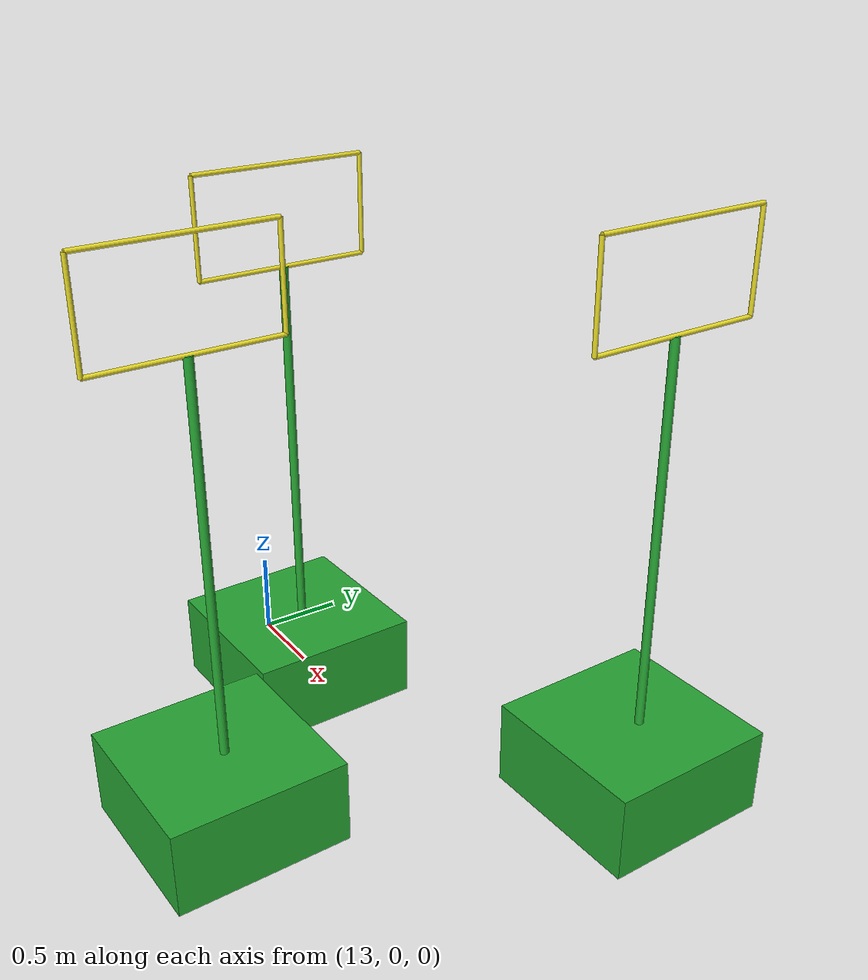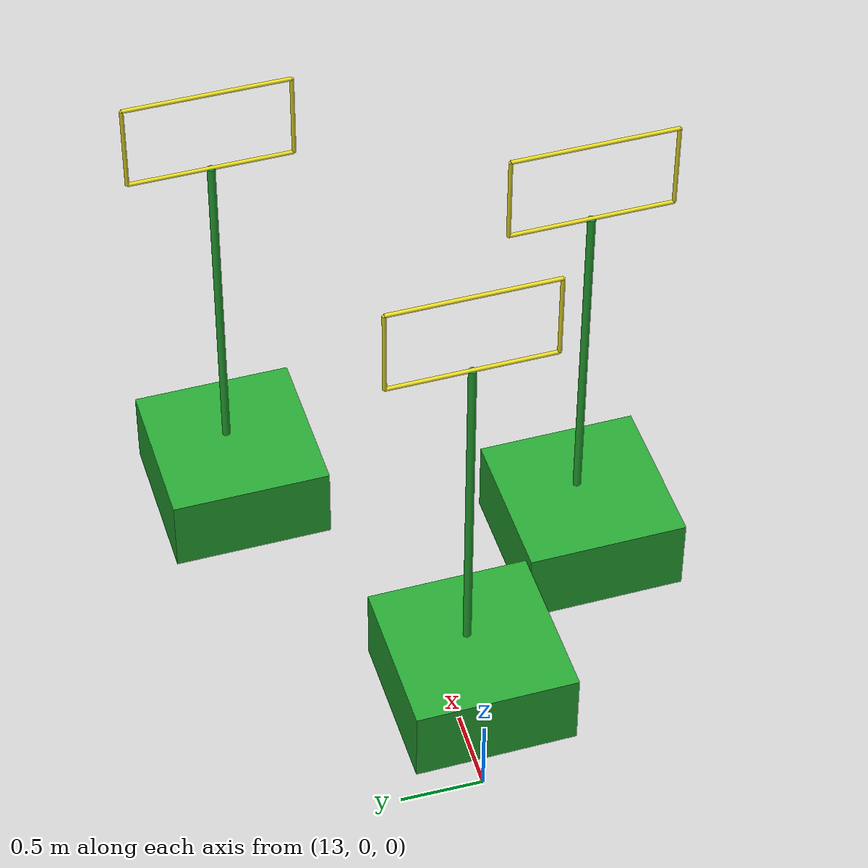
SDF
<sdf version="1.6">
 <world name="vrc_task_1">
  <model name="flipkart_hoop_clone_8">
   <link name="link_0">
    <inertial>
     <mass>0.530306</mass>
     <inertia>
      <ixx>0.0566207</ixx>
      <ixy>0</ixy>
      <ixz>0</ixz>
      <iyy>0.0566207</iyy>
      <iyz>0</iyz>
      <izz>0.0883844</izz>
     </inertia>
    </inertial>
    <pose>0.141833 0.667401 -1.68595 0 -0 0</pose>
    <visual name="visual">
     <geometry><box><size>1 1 0.5</size></box></geometry>
     <material>
      <lighting>1</lighting>
      <script><uri>file://media/materials/scripts/gazebo.material</uri><name>Gazebo/Green</name></script>
      <shader type="pixel"/>
      <emissive>0 0 0 1</emissive>
     </material>
    </visual>
    <collision name="collision">
     <geometry><box><size>1 1 0.5</size></box></geometry>
     <surface>
      <friction>
       <ode><mu>1</mu><mu2>1</mu2><fdir1>0 0 0</fdir1><slip1>0</slip1><slip2>0</slip2></ode>
       <torsional>
        <coefficient>1</coefficient>
        <patch_radius>0</patch_radius>
        <surface_radius>0</surface_radius>
        <use_patch_radius>1</use_patch_radius>
        <ode><slip>0</slip></ode>
       </torsional>
      </friction>
      <bounce><restitution_coefficient>0</restitution_coefficient><threshold>1e+06</threshold></bounce>
      <contact>
       <collide_without_contact>0</collide_without_contact>
       <collide_without_contact_bitmask>1</collide_without_contact_bitmask>
       <collide_bitmask>1</collide_bitmask>
       <ode>
        <soft_cfm>0</soft_cfm>
        <soft_erp>0.2</soft_erp>
        <kp>1e+13</kp>
        <kd>1</kd>
        <max_vel>0.01</max_vel>
        <min_depth>0</min_depth>
       </ode>
       <bullet>
        <split_impulse>1</split_impulse>
        <split_impulse_penetration_threshold>-0.01</split_impulse_penetration_threshold>
        <soft_cfm>0</soft_cfm>
        <soft_erp>0.2</soft_erp>
        <kp>1e+13</kp>
        <kd>1</kd>
       </bullet>
      </contact>
     </surface>
    </collision>
   </link>
   <link name="link_1">
    <inertial>
     <mass>0.25</mass>
     <inertia>
      <ixx>0.130247</ixx>
      <ixy>0</ixy>
      <ixz>0</ixz>
      <iyy>0.130247</iyy>
      <iyz>0</iyz>
      <izz>7.813e-05</izz>
     </inertia>
    </inertial>
    <pose>0.122412 0.714194 -0.478486 0 -0 0</pose>
    <visual name="visual">
     <geometry><cylinder><radius>0.025</radius><length>2.5</length></cylinder></geometry>
     <material>
      <lighting>1</lighting>
      <script><uri>file://media/materials/scripts/gazebo.material</uri><name>Gazebo/Green</name></script>
      <shader type="pixel"/>
      <emissive>0 0 0 1</emissive>
     </material>
    </visual>
    <collision name="collision">
     <geometry><cylinder><radius>0.025</radius><length>2.5</length></cylinder></geometry>
     <surface>
      <friction>
       <ode><mu>1</mu><mu2>1</mu2><fdir1>0 0 0</fdir1><slip1>0</slip1><slip2>0</slip2></ode>
       <torsional>
        <coefficient>1</coefficient>
        <patch_radius>0</patch_radius>
        <surface_radius>0</surface_radius>
        <use_patch_radius>1</use_patch_radius>
        <ode><slip>0</slip></ode>
       </torsional>
      </friction>
      <bounce><restitution_coefficient>0</restitution_coefficient><threshold>1e+06</threshold></bounce>
      <contact>
       <collide_without_contact>0</collide_without_contact>
       <collide_without_contact_bitmask>1</collide_without_contact_bitmask>
       <collide_bitmask>1</collide_bitmask>
       <ode>
        <soft_cfm>0</soft_cfm>
        <soft_erp>0.2</soft_erp>
        <kp>1e+13</kp>
        <kd>1</kd>
        <max_vel>0.01</max_vel>
        <min_depth>0</min_depth>
       </ode>
       <bullet>
        <split_impulse>1</split_impulse>
        <split_impulse_penetration_threshold>-0.01</split_impulse_penetration_threshold>
        <soft_cfm>0</soft_cfm>
        <soft_erp>0.2</soft_erp>
        <kp>1e+13</kp>
        <kd>1</kd>
       </bullet>
      </contact>
     </surface>
    </collision>
   </link>
   <link name="link_2">
    <inertial>
     <mass>0.05</mass>
     <inertia>
      <ixx>0.00416862</ixx>
      <ixy>0</ixy>
      <ixz>0</ixz>
      <iyy>0.00416862</iyy>
      <iyz>0</iyz>
      <izz>3.91e-06</izz>
     </inertia>
    </inertial>
    <pose>0.122412 0.714194 1.32141 1.57 -0 1.57</pose>
    <visual name="visual">
     <geometry><cylinder><radius>0.0125</radius><length>1</length></cylinder></geometry>
     <material>
      <lighting>1</lighting>
      <script><uri>file://media/materials/scripts/gazebo.material</uri><name>Gazebo/Yellow</name></script>
      <shader type="pixel"/>
      <emissive>0 0 0 1</emissive>
     </material>
    </visual>
    <collision name="collision">
     <geometry><cylinder><radius>0.0125</radius><length>1</length></cylinder></geometry>
     <surface>
      <friction>
       <ode><mu>1</mu><mu2>1</mu2><fdir1>0 0 0</fdir1><slip1>0</slip1><slip2>0</slip2></ode>
       <torsional>
        <coefficient>1</coefficient>
        <patch_radius>0</patch_radius>
        <surface_radius>0</surface_radius>
        <use_patch_radius>1</use_patch_radius>
        <ode><slip>0</slip></ode>
       </torsional>
      </friction>
      <bounce><restitution_coefficient>0</restitution_coefficient><threshold>1e+06</threshold></bounce>
      <contact>
       <collide_without_contact>0</collide_without_contact>
       <collide_without_contact_bitmask>1</collide_without_contact_bitmask>
       <collide_bitmask>1</collide_bitmask>
       <ode>
        <soft_cfm>0</soft_cfm>
        <soft_erp>0.2</soft_erp>
        <kp>1e+13</kp>
        <kd>1</kd>
        <max_vel>0.01</max_vel>
        <min_depth>0</min_depth>
       </ode>
       <bullet>
        <split_impulse>1</split_impulse>
        <split_impulse_penetration_threshold>-0.01</split_impulse_penetration_threshold>
        <soft_cfm>0</soft_cfm>
        <soft_erp>0.2</soft_erp>
        <kp>1e+13</kp>
        <kd>1</kd>
       </bullet>
      </contact>
     </surface>
    </collision>
   </link>
   <link name="link_2_clone_0">
    <inertial>
     <mass>0.05</mass>
     <inertia>
      <ixx>0.00416862</ixx>
      <ixy>0</ixy>
      <ixz>0</ixz>
      <iyy>0.00416862</iyy>
      <iyz>0</iyz>
      <izz>3.91e-06</izz>
     </inertia>
    </inertial>
    <pose>0.122412 0.714194 0.771414 1.57 -0 1.57</pose>
    <visual name="visual">
     <geometry><cylinder><radius>0.0125</radius><length>1</length></cylinder></geometry>
     <material>
      <lighting>1</lighting>
      <script><uri>file://media/materials/scripts/gazebo.material</uri><name>Gazebo/Yellow</name></script>
      <shader type="pixel"/>
      <emissive>0 0 0 1</emissive>
     </material>
    </visual>
    <collision name="collision">
     <geometry><cylinder><radius>0.0125</radius><length>1</length></cylinder></geometry>
     <surface>
      <friction>
       <ode><mu>1</mu><mu2>1</mu2><fdir1>0 0 0</fdir1><slip1>0</slip1><slip2>0</slip2></ode>
       <torsional>
        <coefficient>1</coefficient>
        <patch_radius>0</patch_radius>
        <surface_radius>0</surface_radius>
        <use_patch_radius>1</use_patch_radius>
        <ode><slip>0</slip></ode>
       </torsional>
      </friction>
      <bounce><restitution_coefficient>0</restitution_coefficient><threshold>1e+06</threshold></bounce>
      <contact>
       <collide_without_contact>0</collide_without_contact>
       <collide_without_contact_bitmask>1</collide_without_contact_bitmask>
       <collide_bitmask>1</collide_bitmask>
       <ode>
        <soft_cfm>0</soft_cfm>
        <soft_erp>0.2</soft_erp>
        <kp>1e+13</kp>
        <kd>1</kd>
        <max_vel>0.01</max_vel>
        <min_depth>0</min_depth>
       </ode>
       <bullet>
        <split_impulse>1</split_impulse>
        <split_impulse_penetration_threshold>-0.01</split_impulse_penetration_threshold>
        <soft_cfm>0</soft_cfm>
        <soft_erp>0.2</soft_erp>
        <kp>1e+13</kp>
        <kd>1</kd>
       </bullet>
      </contact>
     </surface>
    </collision>
   </link>
   <link name="link_3_clone_clone">
    <inertial>
     <mass>0.025</mass>
     <inertia>
      <ixx>0.00063118</ixx>
      <ixy>0</ixy>
      <ixz>0</ixz>
      <iyy>0.00063118</iyy>
      <iyz>0</iyz>
      <izz>1.95e-06</izz>
     </inertia>
    </inertial>
    <pose>-0.377588 0.714194 1.04641 8e-06 -0 8e-06</pose>
    <visual name="visual">
     <geometry><cylinder><radius>0.0125</radius><length>0.55</length></cylinder></geometry>
     <material>
      <lighting>1</lighting>
      <script><uri>file://media/materials/scripts/gazebo.material</uri><name>Gazebo/Yellow</name></script>
      <shader type="pixel"/>
      <emissive>0 0 0 1</emissive>
     </material>
    </visual>
    <collision name="collision">
     <geometry><cylinder><radius>0.0125</radius><length>0.55</length></cylinder></geometry>
     <surface>
      <friction>
       <ode><mu>1</mu><mu2>1</mu2><fdir1>0 0 0</fdir1><slip1>0</slip1><slip2>0</slip2></ode>
       <torsional>
        <coefficient>1</coefficient>
        <patch_radius>0</patch_radius>
        <surface_radius>0</surface_radius>
        <use_patch_radius>1</use_patch_radius>
        <ode><slip>0</slip></ode>
       </torsional>
      </friction>
      <bounce><restitution_coefficient>0</restitution_coefficient><threshold>1e+06</threshold></bounce>
      <contact>
       <collide_without_contact>0</collide_without_contact>
       <collide_without_contact_bitmask>1</collide_without_contact_bitmask>
       <collide_bitmask>1</collide_bitmask>
       <ode>
        <soft_cfm>0</soft_cfm>
        <soft_erp>0.2</soft_erp>
        <kp>1e+13</kp>
        <kd>1</kd>
        <max_vel>0.01</max_vel>
        <min_depth>0</min_depth>
       </ode>
       <bullet>
        <split_impulse>1</split_impulse>
        <split_impulse_penetration_threshold>-0.01</split_impulse_penetration_threshold>
        <soft_cfm>0</soft_cfm>
        <soft_erp>0.2</soft_erp>
        <kp>1e+13</kp>
        <kd>1</kd>
       </bullet>
      </contact>
     </surface>
    </collision>
   </link>
   <link name="link_3_clone_clone_clone">
    <inertial>
     <mass>0.025</mass>
     <inertia>
      <ixx>0.00063118</ixx>
      <ixy>0</ixy>
      <ixz>0</ixz>
      <iyy>0.00063118</iyy>
      <iyz>0</iyz>
      <izz>1.95e-06</izz>
     </inertia>
    </inertial>
    <pose>0.622412 0.714194 1.04641 5.7e-05 -0 5.7e-05</pose>
    <visual name="visual">
     <geometry><cylinder><radius>0.0125</radius><length>0.55</length></cylinder></geometry>
     <material>
      <lighting>1</lighting>
      <script><uri>file://media/materials/scripts/gazebo.material</uri><name>Gazebo/Yellow</name></script>
      <shader type="pixel"/>
      <emissive>0 0 0 1</emissive>
     </material>
    </visual>
    <collision name="collision">
     <geometry><cylinder><radius>0.0125</radius><length>0.55</length></cylinder></geometry>
     <surface>
      <friction>
       <ode><mu>1</mu><mu2>1</mu2><fdir1>0 0 0</fdir1><slip1>0</slip1><slip2>0</slip2></ode>
       <torsional>
        <coefficient>1</coefficient>
        <patch_radius>0</patch_radius>
        <surface_radius>0</surface_radius>
        <use_patch_radius>1</use_patch_radius>
        <ode><slip>0</slip></ode>
       </torsional>
      </friction>
      <bounce><restitution_coefficient>0</restitution_coefficient><threshold>1e+06</threshold></bounce>
      <contact>
       <collide_without_contact>0</collide_without_contact>
       <collide_without_contact_bitmask>1</collide_without_contact_bitmask>
       <collide_bitmask>1</collide_bitmask>
       <ode>
        <soft_cfm>0</soft_cfm>
        <soft_erp>0.2</soft_erp>
        <kp>1e+13</kp>
        <kd>1</kd>
        <max_vel>0.01</max_vel>
        <min_depth>0</min_depth>
       </ode>
       <bullet>
        <split_impulse>1</split_impulse>
        <split_impulse_penetration_threshold>-0.01</split_impulse_penetration_threshold>
        <soft_cfm>0</soft_cfm>
        <soft_erp>0.2</soft_erp>
        <kp>1e+13</kp>
        <kd>1</kd>
       </bullet>
      </contact>
     </surface>
    </collision>
   </link>
   <joint name="link_0_JOINT_0" type="fixed">
    <parent>link_0</parent>
    <child>link_1</child>
    <physics>
     <ode><limit><cfm>0</cfm><erp>0.2</erp></limit><suspension><cfm>0</cfm><erp>0.2</erp></suspension></ode>
    </physics>
   </joint>
   <joint name="link_1_JOINT_0" type="fixed">
    <parent>link_1</parent>
    <child>link_2_clone_0</child>
    <physics>
     <ode><limit><cfm>0</cfm><erp>0.2</erp></limit><suspension><cfm>0</cfm><erp>0.2</erp></suspension></ode>
    </physics>
   </joint>
   <joint name="link_2_JOINT_2" type="fixed">
    <parent>link_2</parent>
    <child>link_3_clone_clone_clone</child>
    <physics>
     <ode><limit><cfm>0</cfm><erp>0.2</erp></limit><suspension><cfm>0</cfm><erp>0.2</erp></suspension></ode>
    </physics>
   </joint>
   <joint name="link_2_clone_0_JOINT_4" type="fixed">
    <parent>link_2_clone_0</parent>
    <child>link_3_clone_clone</child>
    <physics>
     <ode><limit><cfm>0</cfm><erp>0.2</erp></limit><suspension><cfm>0</cfm><erp>0.2</erp></suspension></ode>
    </physics>
   </joint>
   <joint name="link_3_clone_clone_JOINT_1" type="fixed">
    <parent>link_3_clone_clone</parent>
    <child>link_2</child>
    <physics>
     <ode><limit><cfm>0</cfm><erp>0.2</erp></limit><suspension><cfm>0</cfm><erp>0.2</erp></suspension></ode>
    </physics>
   </joint>
   <joint name="link_3_clone_clone_clone_JOINT_3" type="fixed">
    <parent>link_3_clone_clone_clone</parent>
    <child>link_2_clone_0</child>
    <physics>
     <ode><limit><cfm>0</cfm><erp>0.2</erp></limit><suspension><cfm>0</cfm><erp>0.2</erp></suspension></ode>
    </physics>
   </joint>
   <static>0</static>
   <pose>13.0005 -0.000211 1.9359 -3e-06 -6.6e-05 -1.54349</pose>
  </model>
  <model name="flipkart_hoop_clone_9">
   <link name="link_0">
    <inertial>
     <mass>0.530306</mass>
     <inertia>
      <ixx>0.0566207</ixx>
      <ixy>0</ixy>
      <ixz>0</ixz>
      <iyy>0.0566207</iyy>
      <iyz>0</iyz>
      <izz>0.0883844</izz>
     </inertia>
    </inertial>
    <pose>0.141833 0.667401 -1.68595 0 -0 0</pose>
    <visual name="visual">
     <geometry><box><size>1 1 0.5</size></box></geometry>
     <material>
      <lighting>1</lighting>
      <script><uri>file://media/materials/scripts/gazebo.material</uri><name>Gazebo/Green</name></script>
      <shader type="pixel"/>
      <emissive>0 0 0 1</emissive>
     </material>
    </visual>
    <collision name="collision">
     <geometry><box><size>1 1 0.5</size></box></geometry>
     <surface>
      <friction>
       <ode><mu>1</mu><mu2>1</mu2><fdir1>0 0 0</fdir1><slip1>0</slip1><slip2>0</slip2></ode>
       <torsional>
        <coefficient>1</coefficient>
        <patch_radius>0</patch_radius>
        <surface_radius>0</surface_radius>
        <use_patch_radius>1</use_patch_radius>
        <ode><slip>0</slip></ode>
       </torsional>
      </friction>
      <bounce><restitution_coefficient>0</restitution_coefficient><threshold>1e+06</threshold></bounce>
      <contact>
       <collide_without_contact>0</collide_without_contact>
       <collide_without_contact_bitmask>1</collide_without_contact_bitmask>
       <collide_bitmask>1</collide_bitmask>
       <ode>
        <soft_cfm>0</soft_cfm>
        <soft_erp>0.2</soft_erp>
        <kp>1e+13</kp>
        <kd>1</kd>
        <max_vel>0.01</max_vel>
        <min_depth>0</min_depth>
       </ode>
       <bullet>
        <split_impulse>1</split_impulse>
        <split_impulse_penetration_threshold>-0.01</split_impulse_penetration_threshold>
        <soft_cfm>0</soft_cfm>
        <soft_erp>0.2</soft_erp>
        <kp>1e+13</kp>
        <kd>1</kd>
       </bullet>
      </contact>
     </surface>
    </collision>
   </link>
   <link name="link_1">
    <inertial>
     <mass>0.25</mass>
     <inertia>
      <ixx>0.130247</ixx>
      <ixy>0</ixy>
      <ixz>0</ixz>
      <iyy>0.130247</iyy>
      <iyz>0</iyz>
      <izz>7.813e-05</izz>
     </inertia>
    </inertial>
    <pose>0.122412 0.714194 -0.478486 0 -0 0</pose>
    <visual name="visual">
     <geometry><cylinder><radius>0.025</radius><length>2.5</length></cylinder></geometry>
     <material>
      <lighting>1</lighting>
      <script><uri>file://media/materials/scripts/gazebo.material</uri><name>Gazebo/Green</name></script>
      <shader type="pixel"/>
      <emissive>0 0 0 1</emissive>
     </material>
    </visual>
    <collision name="collision">
     <geometry><cylinder><radius>0.025</radius><length>2.5</length></cylinder></geometry>
     <surface>
      <friction>
       <ode><mu>1</mu><mu2>1</mu2><fdir1>0 0 0</fdir1><slip1>0</slip1><slip2>0</slip2></ode>
       <torsional>
        <coefficient>1</coefficient>
        <patch_radius>0</patch_radius>
        <surface_radius>0</surface_radius>
        <use_patch_radius>1</use_patch_radius>
        <ode><slip>0</slip></ode>
       </torsional>
      </friction>
      <bounce><restitution_coefficient>0</restitution_coefficient><threshold>1e+06</threshold></bounce>
      <contact>
       <collide_without_contact>0</collide_without_contact>
       <collide_without_contact_bitmask>1</collide_without_contact_bitmask>
       <collide_bitmask>1</collide_bitmask>
       <ode>
        <soft_cfm>0</soft_cfm>
        <soft_erp>0.2</soft_erp>
        <kp>1e+13</kp>
        <kd>1</kd>
        <max_vel>0.01</max_vel>
        <min_depth>0</min_depth>
       </ode>
       <bullet>
        <split_impulse>1</split_impulse>
        <split_impulse_penetration_threshold>-0.01</split_impulse_penetration_threshold>
        <soft_cfm>0</soft_cfm>
        <soft_erp>0.2</soft_erp>
        <kp>1e+13</kp>
        <kd>1</kd>
       </bullet>
      </contact>
     </surface>
    </collision>
   </link>
   <link name="link_2">
    <inertial>
     <mass>0.05</mass>
     <inertia>
      <ixx>0.00416862</ixx>
      <ixy>0</ixy>
      <ixz>0</ixz>
      <iyy>0.00416862</iyy>
      <iyz>0</iyz>
      <izz>3.91e-06</izz>
     </inertia>
    </inertial>
    <pose>0.122412 0.714194 1.32141 1.57 -0 1.57</pose>
    <visual name="visual">
     <geometry><cylinder><radius>0.0125</radius><length>1</length></cylinder></geometry>
     <material>
      <lighting>1</lighting>
      <script><uri>file://media/materials/scripts/gazebo.material</uri><name>Gazebo/Yellow</name></script>
      <shader type="pixel"/>
      <emissive>0 0 0 1</emissive>
     </material>
    </visual>
    <collision name="collision">
     <geometry><cylinder><radius>0.0125</radius><length>1</length></cylinder></geometry>
     <surface>
      <friction>
       <ode><mu>1</mu><mu2>1</mu2><fdir1>0 0 0</fdir1><slip1>0</slip1><slip2>0</slip2></ode>
       <torsional>
        <coefficient>1</coefficient>
        <patch_radius>0</patch_radius>
        <surface_radius>0</surface_radius>
        <use_patch_radius>1</use_patch_radius>
        <ode><slip>0</slip></ode>
       </torsional>
      </friction>
      <bounce><restitution_coefficient>0</restitution_coefficient><threshold>1e+06</threshold></bounce>
      <contact>
       <collide_without_contact>0</collide_without_contact>
       <collide_without_contact_bitmask>1</collide_without_contact_bitmask>
       <collide_bitmask>1</collide_bitmask>
       <ode>
        <soft_cfm>0</soft_cfm>
        <soft_erp>0.2</soft_erp>
        <kp>1e+13</kp>
        <kd>1</kd>
        <max_vel>0.01</max_vel>
        <min_depth>0</min_depth>
       </ode>
       <bullet>
        <split_impulse>1</split_impulse>
        <split_impulse_penetration_threshold>-0.01</split_impulse_penetration_threshold>
        <soft_cfm>0</soft_cfm>
        <soft_erp>0.2</soft_erp>
        <kp>1e+13</kp>
        <kd>1</kd>
       </bullet>
      </contact>
     </surface>
    </collision>
   </link>
   <link name="link_2_clone_0">
    <inertial>
     <mass>0.05</mass>
     <inertia>
      <ixx>0.00416862</ixx>
      <ixy>0</ixy>
      <ixz>0</ixz>
      <iyy>0.00416862</iyy>
      <iyz>0</iyz>
      <izz>3.91e-06</izz>
     </inertia>
    </inertial>
    <pose>0.122412 0.714194 0.771414 1.57 -0 1.57</pose>
    <visual name="visual">
     <geometry><cylinder><radius>0.0125</radius><length>1</length></cylinder></geometry>
     <material>
      <lighting>1</lighting>
      <script><uri>file://media/materials/scripts/gazebo.material</uri><name>Gazebo/Yellow</name></script>
      <shader type="pixel"/>
      <emissive>0 0 0 1</emissive>
     </material>
    </visual>
    <collision name="collision">
     <geometry><cylinder><radius>0.0125</radius><length>1</length></cylinder></geometry>
     <surface>
      <friction>
       <ode><mu>1</mu><mu2>1</mu2><fdir1>0 0 0</fdir1><slip1>0</slip1><slip2>0</slip2></ode>
       <torsional>
        <coefficient>1</coefficient>
        <patch_radius>0</patch_radius>
        <surface_radius>0</surface_radius>
        <use_patch_radius>1</use_patch_radius>
        <ode><slip>0</slip></ode>
       </torsional>
      </friction>
      <bounce><restitution_coefficient>0</restitution_coefficient><threshold>1e+06</threshold></bounce>
      <contact>
       <collide_without_contact>0</collide_without_contact>
       <collide_without_contact_bitmask>1</collide_without_contact_bitmask>
       <collide_bitmask>1</collide_bitmask>
       <ode>
        <soft_cfm>0</soft_cfm>
        <soft_erp>0.2</soft_erp>
        <kp>1e+13</kp>
        <kd>1</kd>
        <max_vel>0.01</max_vel>
        <min_depth>0</min_depth>
       </ode>
       <bullet>
        <split_impulse>1</split_impulse>
        <split_impulse_penetration_threshold>-0.01</split_impulse_penetration_threshold>
        <soft_cfm>0</soft_cfm>
        <soft_erp>0.2</soft_erp>
        <kp>1e+13</kp>
        <kd>1</kd>
       </bullet>
      </contact>
     </surface>
    </collision>
   </link>
   <link name="link_3_clone_clone">
    <inertial>
     <mass>0.025</mass>
     <inertia>
      <ixx>0.00063118</ixx>
      <ixy>0</ixy>
      <ixz>0</ixz>
      <iyy>0.00063118</iyy>
      <iyz>0</iyz>
      <izz>1.95e-06</izz>
     </inertia>
    </inertial>
    <pose>-0.377588 0.714194 1.04641 8e-06 -0 8e-06</pose>
    <visual name="visual">
     <geometry><cylinder><radius>0.0125</radius><length>0.55</length></cylinder></geometry>
     <material>
      <lighting>1</lighting>
      <script><uri>file://media/materials/scripts/gazebo.material</uri><name>Gazebo/Yellow</name></script>
      <shader type="pixel"/>
      <emissive>0 0 0 1</emissive>
     </material>
    </visual>
    <collision name="collision">
     <geometry><cylinder><radius>0.0125</radius><length>0.55</length></cylinder></geometry>
     <surface>
      <friction>
       <ode><mu>1</mu><mu2>1</mu2><fdir1>0 0 0</fdir1><slip1>0</slip1><slip2>0</slip2></ode>
       <torsional>
        <coefficient>1</coefficient>
        <patch_radius>0</patch_radius>
        <surface_radius>0</surface_radius>
        <use_patch_radius>1</use_patch_radius>
        <ode><slip>0</slip></ode>
       </torsional>
      </friction>
      <bounce><restitution_coefficient>0</restitution_coefficient><threshold>1e+06</threshold></bounce>
      <contact>
       <collide_without_contact>0</collide_without_contact>
       <collide_without_contact_bitmask>1</collide_without_contact_bitmask>
       <collide_bitmask>1</collide_bitmask>
       <ode>
        <soft_cfm>0</soft_cfm>
        <soft_erp>0.2</soft_erp>
        <kp>1e+13</kp>
        <kd>1</kd>
        <max_vel>0.01</max_vel>
        <min_depth>0</min_depth>
       </ode>
       <bullet>
        <split_impulse>1</split_impulse>
        <split_impulse_penetration_threshold>-0.01</split_impulse_penetration_threshold>
        <soft_cfm>0</soft_cfm>
        <soft_erp>0.2</soft_erp>
        <kp>1e+13</kp>
        <kd>1</kd>
       </bullet>
      </contact>
     </surface>
    </collision>
   </link>
   <link name="link_3_clone_clone_clone">
    <inertial>
     <mass>0.025</mass>
     <inertia>
      <ixx>0.00063118</ixx>
      <ixy>0</ixy>
      <ixz>0</ixz>
      <iyy>0.00063118</iyy>
      <iyz>0</iyz>
      <izz>1.95e-06</izz>
     </inertia>
    </inertial>
    <pose>0.622412 0.714194 1.04641 5.7e-05 -0 5.7e-05</pose>
    <visual name="visual">
     <geometry><cylinder><radius>0.0125</radius><length>0.55</length></cylinder></geometry>
     <material>
      <lighting>1</lighting>
      <script><uri>file://media/materials/scripts/gazebo.material</uri><name>Gazebo/Yellow</name></script>
      <shader type="pixel"/>
      <emissive>0 0 0 1</emissive>
     </material>
    </visual>
    <collision name="collision">
     <geometry><cylinder><radius>0.0125</radius><length>0.55</length></cylinder></geometry>
     <surface>
      <friction>
       <ode><mu>1</mu><mu2>1</mu2><fdir1>0 0 0</fdir1><slip1>0</slip1><slip2>0</slip2></ode>
       <torsional>
        <coefficient>1</coefficient>
        <patch_radius>0</patch_radius>
        <surface_radius>0</surface_radius>
        <use_patch_radius>1</use_patch_radius>
        <ode><slip>0</slip></ode>
       </torsional>
      </friction>
      <bounce><restitution_coefficient>0</restitution_coefficient><threshold>1e+06</threshold></bounce>
      <contact>
       <collide_without_contact>0</collide_without_contact>
       <collide_without_contact_bitmask>1</collide_without_contact_bitmask>
       <collide_bitmask>1</collide_bitmask>
       <ode>
        <soft_cfm>0</soft_cfm>
        <soft_erp>0.2</soft_erp>
        <kp>1e+13</kp>
        <kd>1</kd>
        <max_vel>0.01</max_vel>
        <min_depth>0</min_depth>
       </ode>
       <bullet>
        <split_impulse>1</split_impulse>
        <split_impulse_penetration_threshold>-0.01</split_impulse_penetration_threshold>
        <soft_cfm>0</soft_cfm>
        <soft_erp>0.2</soft_erp>
        <kp>1e+13</kp>
        <kd>1</kd>
       </bullet>
      </contact>
     </surface>
    </collision>
   </link>
   <joint name="link_0_JOINT_0" type="fixed">
    <parent>link_0</parent>
    <child>link_1</child>
    <physics>
     <ode><limit><cfm>0</cfm><erp>0.2</erp></limit><suspension><cfm>0</cfm><erp>0.2</erp></suspension></ode>
    </physics>
   </joint>
   <joint name="link_1_JOINT_0" type="fixed">
    <parent>link_1</parent>
    <child>link_2_clone_0</child>
    <physics>
     <ode><limit><cfm>0</cfm><erp>0.2</erp></limit><suspension><cfm>0</cfm><erp>0.2</erp></suspension></ode>
    </physics>
   </joint>
   <joint name="link_2_JOINT_2" type="fixed">
    <parent>link_2</parent>
    <child>link_3_clone_clone_clone</child>
    <physics>
     <ode><limit><cfm>0</cfm><erp>0.2</erp></limit><suspension><cfm>0</cfm><erp>0.2</erp></suspension></ode>
    </physics>
   </joint>
   <joint name="link_2_clone_0_JOINT_4" type="fixed">
    <parent>link_2_clone_0</parent>
    <child>link_3_clone_clone</child>
    <physics>
     <ode><limit><cfm>0</cfm><erp>0.2</erp></limit><suspension><cfm>0</cfm><erp>0.2</erp></suspension></ode>
    </physics>
   </joint>
   <joint name="link_3_clone_clone_JOINT_1" type="fixed">
    <parent>link_3_clone_clone</parent>
    <child>link_2</child>
    <physics>
     <ode><limit><cfm>0</cfm><erp>0.2</erp></limit><suspension><cfm>0</cfm><erp>0.2</erp></suspension></ode>
    </physics>
   </joint>
   <joint name="link_3_clone_clone_clone_JOINT_3" type="fixed">
    <parent>link_3_clone_clone_clone</parent>
    <child>link_2_clone_0</child>
    <physics>
     <ode><limit><cfm>0</cfm><erp>0.2</erp></limit><suspension><cfm>0</cfm><erp>0.2</erp></suspension></ode>
    </physics>
   </joint>
   <static>0</static>
   <pose>14.0006 -0.999226 1.93592 -1e-06 5.8e-05 -1.54265</pose>
  </model>
  <model name="flipkart_hoop_clone_10">
   <link name="link_0">
    <inertial>
     <mass>0.530306</mass>
     <inertia>
      <ixx>0.0566207</ixx>
      <ixy>0</ixy>
      <ixz>0</ixz>
      <iyy>0.0566207</iyy>
      <iyz>0</iyz>
      <izz>0.0883844</izz>
     </inertia>
    </inertial>
    <pose>0.141833 0.667401 -1.68595 0 -0 0</pose>
    <visual name="visual">
     <geometry><box><size>1 1 0.5</size></box></geometry>
     <material>
      <lighting>1</lighting>
      <script><uri>file://media/materials/scripts/gazebo.material</uri><name>Gazebo/Green</name></script>
      <shader type="pixel"/>
      <emissive>0 0 0 1</emissive>
     </material>
    </visual>
    <collision name="collision">
     <geometry><box><size>1 1 0.5</size></box></geometry>
     <surface>
      <friction>
       <ode><mu>1</mu><mu2>1</mu2><fdir1>0 0 0</fdir1><slip1>0</slip1><slip2>0</slip2></ode>
       <torsional>
        <coefficient>1</coefficient>
        <patch_radius>0</patch_radius>
        <surface_radius>0</surface_radius>
        <use_patch_radius>1</use_patch_radius>
        <ode><slip>0</slip></ode>
       </torsional>
      </friction>
      <bounce><restitution_coefficient>0</restitution_coefficient><threshold>1e+06</threshold></bounce>
      <contact>
       <collide_without_contact>0</collide_without_contact>
       <collide_without_contact_bitmask>1</collide_without_contact_bitmask>
       <collide_bitmask>1</collide_bitmask>
       <ode>
        <soft_cfm>0</soft_cfm>
        <soft_erp>0.2</soft_erp>
        <kp>1e+13</kp>
        <kd>1</kd>
        <max_vel>0.01</max_vel>
        <min_depth>0</min_depth>
       </ode>
       <bullet>
        <split_impulse>1</split_impulse>
        <split_impulse_penetration_threshold>-0.01</split_impulse_penetration_threshold>
        <soft_cfm>0</soft_cfm>
        <soft_erp>0.2</soft_erp>
        <kp>1e+13</kp>
        <kd>1</kd>
       </bullet>
      </contact>
     </surface>
    </collision>
   </link>
   <link name="link_1">
    <inertial>
     <mass>0.25</mass>
     <inertia>
      <ixx>0.130247</ixx>
      <ixy>0</ixy>
      <ixz>0</ixz>
      <iyy>0.130247</iyy>
      <iyz>0</iyz>
      <izz>7.813e-05</izz>
     </inertia>
    </inertial>
    <pose>0.122412 0.714194 -0.478486 0 -0 0</pose>
    <visual name="visual">
     <geometry><cylinder><radius>0.025</radius><length>2.5</length></cylinder></geometry>
     <material>
      <lighting>1</lighting>
      <script><uri>file://media/materials/scripts/gazebo.material</uri><name>Gazebo/Green</name></script>
      <shader type="pixel"/>
      <emissive>0 0 0 1</emissive>
     </material>
    </visual>
    <collision name="collision">
     <geometry><cylinder><radius>0.025</radius><length>2.5</length></cylinder></geometry>
     <surface>
      <friction>
       <ode><mu>1</mu><mu2>1</mu2><fdir1>0 0 0</fdir1><slip1>0</slip1><slip2>0</slip2></ode>
       <torsional>
        <coefficient>1</coefficient>
        <patch_radius>0</patch_radius>
        <surface_radius>0</surface_radius>
        <use_patch_radius>1</use_patch_radius>
        <ode><slip>0</slip></ode>
       </torsional>
      </friction>
      <bounce><restitution_coefficient>0</restitution_coefficient><threshold>1e+06</threshold></bounce>
      <contact>
       <collide_without_contact>0</collide_without_contact>
       <collide_without_contact_bitmask>1</collide_without_contact_bitmask>
       <collide_bitmask>1</collide_bitmask>
       <ode>
        <soft_cfm>0</soft_cfm>
        <soft_erp>0.2</soft_erp>
        <kp>1e+13</kp>
        <kd>1</kd>
        <max_vel>0.01</max_vel>
        <min_depth>0</min_depth>
       </ode>
       <bullet>
        <split_impulse>1</split_impulse>
        <split_impulse_penetration_threshold>-0.01</split_impulse_penetration_threshold>
        <soft_cfm>0</soft_cfm>
        <soft_erp>0.2</soft_erp>
        <kp>1e+13</kp>
        <kd>1</kd>
       </bullet>
      </contact>
     </surface>
    </collision>
   </link>
   <link name="link_2">
    <inertial>
     <mass>0.05</mass>
     <inertia>
      <ixx>0.00416862</ixx>
      <ixy>0</ixy>
      <ixz>0</ixz>
      <iyy>0.00416862</iyy>
      <iyz>0</iyz>
      <izz>3.91e-06</izz>
     </inertia>
    </inertial>
    <pose>0.122412 0.714194 1.32141 1.57 -0 1.57</pose>
    <visual name="visual">
     <geometry><cylinder><radius>0.0125</radius><length>1</length></cylinder></geometry>
     <material>
      <lighting>1</lighting>
      <script><uri>file://media/materials/scripts/gazebo.material</uri><name>Gazebo/Yellow</name></script>
      <shader type="pixel"/>
      <emissive>0 0 0 1</emissive>
     </material>
    </visual>
    <collision name="collision">
     <geometry><cylinder><radius>0.0125</radius><length>1</length></cylinder></geometry>
     <surface>
      <friction>
       <ode><mu>1</mu><mu2>1</mu2><fdir1>0 0 0</fdir1><slip1>0</slip1><slip2>0</slip2></ode>
       <torsional>
        <coefficient>1</coefficient>
        <patch_radius>0</patch_radius>
        <surface_radius>0</surface_radius>
        <use_patch_radius>1</use_patch_radius>
        <ode><slip>0</slip></ode>
       </torsional>
      </friction>
      <bounce><restitution_coefficient>0</restitution_coefficient><threshold>1e+06</threshold></bounce>
      <contact>
       <collide_without_contact>0</collide_without_contact>
       <collide_without_contact_bitmask>1</collide_without_contact_bitmask>
       <collide_bitmask>1</collide_bitmask>
       <ode>
        <soft_cfm>0</soft_cfm>
        <soft_erp>0.2</soft_erp>
        <kp>1e+13</kp>
        <kd>1</kd>
        <max_vel>0.01</max_vel>
        <min_depth>0</min_depth>
       </ode>
       <bullet>
        <split_impulse>1</split_impulse>
        <split_impulse_penetration_threshold>-0.01</split_impulse_penetration_threshold>
        <soft_cfm>0</soft_cfm>
        <soft_erp>0.2</soft_erp>
        <kp>1e+13</kp>
        <kd>1</kd>
       </bullet>
      </contact>
     </surface>
    </collision>
   </link>
   <link name="link_2_clone_0">
    <inertial>
     <mass>0.05</mass>
     <inertia>
      <ixx>0.00416862</ixx>
      <ixy>0</ixy>
      <ixz>0</ixz>
      <iyy>0.00416862</iyy>
      <iyz>0</iyz>
      <izz>3.91e-06</izz>
     </inertia>
    </inertial>
    <pose>0.122412 0.714194 0.771414 1.57 -0 1.57</pose>
    <visual name="visual">
     <geometry><cylinder><radius>0.0125</radius><length>1</length></cylinder></geometry>
     <material>
      <lighting>1</lighting>
      <script><uri>file://media/materials/scripts/gazebo.material</uri><name>Gazebo/Yellow</name></script>
      <shader type="pixel"/>
      <emissive>0 0 0 1</emissive>
     </material>
    </visual>
    <collision name="collision">
     <geometry><cylinder><radius>0.0125</radius><length>1</length></cylinder></geometry>
     <surface>
      <friction>
       <ode><mu>1</mu><mu2>1</mu2><fdir1>0 0 0</fdir1><slip1>0</slip1><slip2>0</slip2></ode>
       <torsional>
        <coefficient>1</coefficient>
        <patch_radius>0</patch_radius>
        <surface_radius>0</surface_radius>
        <use_patch_radius>1</use_patch_radius>
        <ode><slip>0</slip></ode>
       </torsional>
      </friction>
      <bounce><restitution_coefficient>0</restitution_coefficient><threshold>1e+06</threshold></bounce>
      <contact>
       <collide_without_contact>0</collide_without_contact>
       <collide_without_contact_bitmask>1</collide_without_contact_bitmask>
       <collide_bitmask>1</collide_bitmask>
       <ode>
        <soft_cfm>0</soft_cfm>
        <soft_erp>0.2</soft_erp>
        <kp>1e+13</kp>
        <kd>1</kd>
        <max_vel>0.01</max_vel>
        <min_depth>0</min_depth>
       </ode>
       <bullet>
        <split_impulse>1</split_impulse>
        <split_impulse_penetration_threshold>-0.01</split_impulse_penetration_threshold>
        <soft_cfm>0</soft_cfm>
        <soft_erp>0.2</soft_erp>
        <kp>1e+13</kp>
        <kd>1</kd>
       </bullet>
      </contact>
     </surface>
    </collision>
   </link>
   <link name="link_3_clone_clone">
    <inertial>
     <mass>0.025</mass>
     <inertia>
      <ixx>0.00063118</ixx>
      <ixy>0</ixy>
      <ixz>0</ixz>
      <iyy>0.00063118</iyy>
      <iyz>0</iyz>
      <izz>1.95e-06</izz>
     </inertia>
    </inertial>
    <pose>-0.377588 0.714194 1.04641 8e-06 -0 8e-06</pose>
    <visual name="visual">
     <geometry><cylinder><radius>0.0125</radius><length>0.55</length></cylinder></geometry>
     <material>
      <lighting>1</lighting>
      <script><uri>file://media/materials/scripts/gazebo.material</uri><name>Gazebo/Yellow</name></script>
      <shader type="pixel"/>
      <emissive>0 0 0 1</emissive>
     </material>
    </visual>
    <collision name="collision">
     <geometry><cylinder><radius>0.0125</radius><length>0.55</length></cylinder></geometry>
     <surface>
      <friction>
       <ode><mu>1</mu><mu2>1</mu2><fdir1>0 0 0</fdir1><slip1>0</slip1><slip2>0</slip2></ode>
       <torsional>
        <coefficient>1</coefficient>
        <patch_radius>0</patch_radius>
        <surface_radius>0</surface_radius>
        <use_patch_radius>1</use_patch_radius>
        <ode><slip>0</slip></ode>
       </torsional>
      </friction>
      <bounce><restitution_coefficient>0</restitution_coefficient><threshold>1e+06</threshold></bounce>
      <contact>
       <collide_without_contact>0</collide_without_contact>
       <collide_without_contact_bitmask>1</collide_without_contact_bitmask>
       <collide_bitmask>1</collide_bitmask>
       <ode>
        <soft_cfm>0</soft_cfm>
        <soft_erp>0.2</soft_erp>
        <kp>1e+13</kp>
        <kd>1</kd>
        <max_vel>0.01</max_vel>
        <min_depth>0</min_depth>
       </ode>
       <bullet>
        <split_impulse>1</split_impulse>
        <split_impulse_penetration_threshold>-0.01</split_impulse_penetration_threshold>
        <soft_cfm>0</soft_cfm>
        <soft_erp>0.2</soft_erp>
        <kp>1e+13</kp>
        <kd>1</kd>
       </bullet>
      </contact>
     </surface>
    </collision>
   </link>
   <link name="link_3_clone_clone_clone">
    <inertial>
     <mass>0.025</mass>
     <inertia>
      <ixx>0.00063118</ixx>
      <ixy>0</ixy>
      <ixz>0</ixz>
      <iyy>0.00063118</iyy>
      <iyz>0</iyz>
      <izz>1.95e-06</izz>
     </inertia>
    </inertial>
    <pose>0.622412 0.714194 1.04641 5.7e-05 -0 5.7e-05</pose>
    <visual name="visual">
     <geometry><cylinder><radius>0.0125</radius><length>0.55</length></cylinder></geometry>
     <material>
      <lighting>1</lighting>
      <script><uri>file://media/materials/scripts/gazebo.material</uri><name>Gazebo/Yellow</name></script>
      <shader type="pixel"/>
      <emissive>0 0 0 1</emissive>
     </material>
    </visual>
    <collision name="collision">
     <geometry><cylinder><radius>0.0125</radius><length>0.55</length></cylinder></geometry>
     <surface>
      <friction>
       <ode><mu>1</mu><mu2>1</mu2><fdir1>0 0 0</fdir1><slip1>0</slip1><slip2>0</slip2></ode>
       <torsional>
        <coefficient>1</coefficient>
        <patch_radius>0</patch_radius>
        <surface_radius>0</surface_radius>
        <use_patch_radius>1</use_patch_radius>
        <ode><slip>0</slip></ode>
       </torsional>
      </friction>
      <bounce><restitution_coefficient>0</restitution_coefficient><threshold>1e+06</threshold></bounce>
      <contact>
       <collide_without_contact>0</collide_without_contact>
       <collide_without_contact_bitmask>1</collide_without_contact_bitmask>
       <collide_bitmask>1</collide_bitmask>
       <ode>
        <soft_cfm>0</soft_cfm>
        <soft_erp>0.2</soft_erp>
        <kp>1e+13</kp>
        <kd>1</kd>
        <max_vel>0.01</max_vel>
        <min_depth>0</min_depth>
       </ode>
       <bullet>
        <split_impulse>1</split_impulse>
        <split_impulse_penetration_threshold>-0.01</split_impulse_penetration_threshold>
        <soft_cfm>0</soft_cfm>
        <soft_erp>0.2</soft_erp>
        <kp>1e+13</kp>
        <kd>1</kd>
       </bullet>
      </contact>
     </surface>
    </collision>
   </link>
   <joint name="link_0_JOINT_0" type="fixed">
    <parent>link_0</parent>
    <child>link_1</child>
    <physics>
     <ode><limit><cfm>0</cfm><erp>0.2</erp></limit><suspension><cfm>0</cfm><erp>0.2</erp></suspension></ode>
    </physics>
   </joint>
   <joint name="link_1_JOINT_0" type="fixed">
    <parent>link_1</parent>
    <child>link_2_clone_0</child>
    <physics>
     <ode><limit><cfm>0</cfm><erp>0.2</erp></limit><suspension><cfm>0</cfm><erp>0.2</erp></suspension></ode>
    </physics>
   </joint>
   <joint name="link_2_JOINT_2" type="fixed">
    <parent>link_2</parent>
    <child>link_3_clone_clone_clone</child>
    <physics>
     <ode><limit><cfm>0</cfm><erp>0.2</erp></limit><suspension><cfm>0</cfm><erp>0.2</erp></suspension></ode>
    </physics>
   </joint>
   <joint name="link_2_clone_0_JOINT_4" type="fixed">
    <parent>link_2_clone_0</parent>
    <child>link_3_clone_clone</child>
    <physics>
     <ode><limit><cfm>0</cfm><erp>0.2</erp></limit><suspension><cfm>0</cfm><erp>0.2</erp></suspension></ode>
    </physics>
   </joint>
   <joint name="link_3_clone_clone_JOINT_1" type="fixed">
    <parent>link_3_clone_clone</parent>
    <child>link_2</child>
    <physics>
     <ode><limit><cfm>0</cfm><erp>0.2</erp></limit><suspension><cfm>0</cfm><erp>0.2</erp></suspension></ode>
    </physics>
   </joint>
   <joint name="link_3_clone_clone_clone_JOINT_3" type="fixed">
    <parent>link_3_clone_clone_clone</parent>
    <child>link_2_clone_0</child>
    <physics>
     <ode><limit><cfm>0</cfm><erp>0.2</erp></limit><suspension><cfm>0</cfm><erp>0.2</erp></suspension></ode>
    </physics>
   </joint>
   <static>0</static>
   <pose>15.0005 0.999543 1.93595 -0 9e-06 -1.54328</pose>
  </model>
 </world>
</sdf>
